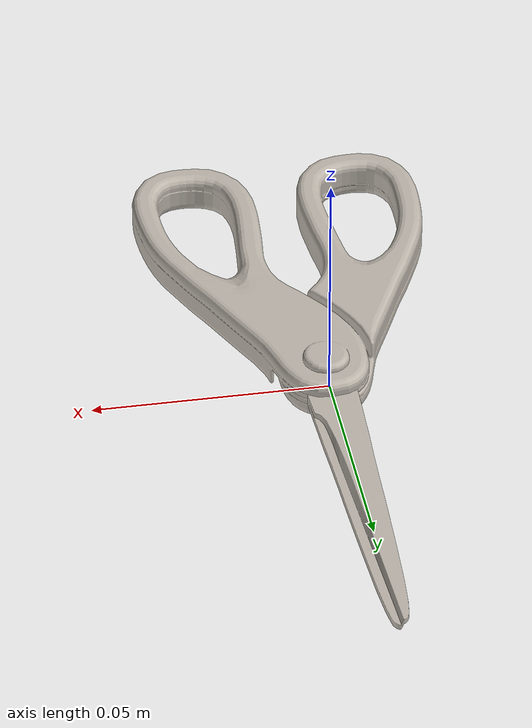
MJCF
<mujoco model="scissors_6">
  <asset>
    <mesh file="visual/model_normalized_0.obj" name="model_normalized_0_vis" scale="0.15999999999999998 0.15999999999999998 0.15999999999999998" refquat="0.7071067811865475 0.0 0.0 0.7071067811865476"/>
    <mesh file="visual/model_normalized_1.obj" name="model_normalized_1_vis" scale="0.15999999999999998 0.15999999999999998 0.15999999999999998" refquat="0.7071067811865475 0.0 0.0 0.7071067811865476"/>
    <mesh file="collision/model_normalized_collision_22.obj" name="model_normalized_collision_22._coll" scale="0.15999999999999998 0.15999999999999998 0.15999999999999998" refquat="0.7071067811865475 0.0 0.0 0.7071067811865476"/>
    <mesh file="collision/model_normalized_collision_23.obj" name="model_normalized_collision_23._coll" scale="0.15999999999999998 0.15999999999999998 0.15999999999999998" refquat="0.7071067811865475 0.0 0.0 0.7071067811865476"/>
    <mesh file="collision/model_normalized_collision_21.obj" name="model_normalized_collision_21._coll" scale="0.15999999999999998 0.15999999999999998 0.15999999999999998" refquat="0.7071067811865475 0.0 0.0 0.7071067811865476"/>
    <mesh file="collision/model_normalized_collision_20.obj" name="model_normalized_collision_20._coll" scale="0.15999999999999998 0.15999999999999998 0.15999999999999998" refquat="0.7071067811865475 0.0 0.0 0.7071067811865476"/>
    <mesh file="collision/model_normalized_collision_24.obj" name="model_normalized_collision_24._coll" scale="0.15999999999999998 0.15999999999999998 0.15999999999999998" refquat="0.7071067811865475 0.0 0.0 0.7071067811865476"/>
    <mesh file="collision/model_normalized_collision_30.obj" name="model_normalized_collision_30._coll" scale="0.15999999999999998 0.15999999999999998 0.15999999999999998" refquat="0.7071067811865475 0.0 0.0 0.7071067811865476"/>
    <mesh file="collision/model_normalized_collision_18.obj" name="model_normalized_collision_18._coll" scale="0.15999999999999998 0.15999999999999998 0.15999999999999998" refquat="0.7071067811865475 0.0 0.0 0.7071067811865476"/>
    <mesh file="collision/model_normalized_collision_19.obj" name="model_normalized_collision_19._coll" scale="0.15999999999999998 0.15999999999999998 0.15999999999999998" refquat="0.7071067811865475 0.0 0.0 0.7071067811865476"/>
    <mesh file="collision/model_normalized_collision_31.obj" name="model_normalized_collision_31._coll" scale="0.15999999999999998 0.15999999999999998 0.15999999999999998" refquat="0.7071067811865475 0.0 0.0 0.7071067811865476"/>
    <mesh file="collision/model_normalized_collision_25.obj" name="model_normalized_collision_25._coll" scale="0.15999999999999998 0.15999999999999998 0.15999999999999998" refquat="0.7071067811865475 0.0 0.0 0.7071067811865476"/>
    <mesh file="collision/model_normalized_collision_27.obj" name="model_normalized_collision_27._coll" scale="0.15999999999999998 0.15999999999999998 0.15999999999999998" refquat="0.7071067811865475 0.0 0.0 0.7071067811865476"/>
    <mesh file="collision/model_normalized_collision_26.obj" name="model_normalized_collision_26._coll" scale="0.15999999999999998 0.15999999999999998 0.15999999999999998" refquat="0.7071067811865475 0.0 0.0 0.7071067811865476"/>
    <mesh file="collision/model_normalized_collision_9.obj" name="model_normalized_collision_9._coll" scale="0.15999999999999998 0.15999999999999998 0.15999999999999998" refquat="0.7071067811865475 0.0 0.0 0.7071067811865476"/>
    <mesh file="collision/model_normalized_collision_8.obj" name="model_normalized_collision_8._coll" scale="0.15999999999999998 0.15999999999999998 0.15999999999999998" refquat="0.7071067811865475 0.0 0.0 0.7071067811865476"/>
    <mesh file="collision/model_normalized_collision_6.obj" name="model_normalized_collision_6._coll" scale="0.15999999999999998 0.15999999999999998 0.15999999999999998" refquat="0.7071067811865475 0.0 0.0 0.7071067811865476"/>
    <mesh file="collision/model_normalized_collision_7.obj" name="model_normalized_collision_7._coll" scale="0.15999999999999998 0.15999999999999998 0.15999999999999998" refquat="0.7071067811865475 0.0 0.0 0.7071067811865476"/>
    <mesh file="collision/model_normalized_collision_5.obj" name="model_normalized_collision_5._coll" scale="0.15999999999999998 0.15999999999999998 0.15999999999999998" refquat="0.7071067811865475 0.0 0.0 0.7071067811865476"/>
    <mesh file="collision/model_normalized_collision_4.obj" name="model_normalized_collision_4._coll" scale="0.15999999999999998 0.15999999999999998 0.15999999999999998" refquat="0.7071067811865475 0.0 0.0 0.7071067811865476"/>
    <mesh file="collision/model_normalized_collision_0.obj" name="model_normalized_collision_0._coll" scale="0.15999999999999998 0.15999999999999998 0.15999999999999998" refquat="0.7071067811865475 0.0 0.0 0.7071067811865476"/>
    <mesh file="collision/model_normalized_collision_1.obj" name="model_normalized_collision_1._coll" scale="0.15999999999999998 0.15999999999999998 0.15999999999999998" refquat="0.7071067811865475 0.0 0.0 0.7071067811865476"/>
    <mesh file="collision/model_normalized_collision_3.obj" name="model_normalized_collision_3._coll" scale="0.15999999999999998 0.15999999999999998 0.15999999999999998" refquat="0.7071067811865475 0.0 0.0 0.7071067811865476"/>
    <mesh file="collision/model_normalized_collision_2.obj" name="model_normalized_collision_2._coll" scale="0.15999999999999998 0.15999999999999998 0.15999999999999998" refquat="0.7071067811865475 0.0 0.0 0.7071067811865476"/>
    <mesh file="collision/model_normalized_collision_17.obj" name="model_normalized_collision_17._coll" scale="0.15999999999999998 0.15999999999999998 0.15999999999999998" refquat="0.7071067811865475 0.0 0.0 0.7071067811865476"/>
    <mesh file="collision/model_normalized_collision_16.obj" name="model_normalized_collision_16._coll" scale="0.15999999999999998 0.15999999999999998 0.15999999999999998" refquat="0.7071067811865475 0.0 0.0 0.7071067811865476"/>
    <mesh file="collision/model_normalized_collision_28.obj" name="model_normalized_collision_28._coll" scale="0.15999999999999998 0.15999999999999998 0.15999999999999998" refquat="0.7071067811865475 0.0 0.0 0.7071067811865476"/>
    <mesh file="collision/model_normalized_collision_14.obj" name="model_normalized_collision_14._coll" scale="0.15999999999999998 0.15999999999999998 0.15999999999999998" refquat="0.7071067811865475 0.0 0.0 0.7071067811865476"/>
    <mesh file="collision/model_normalized_collision_15.obj" name="model_normalized_collision_15._coll" scale="0.15999999999999998 0.15999999999999998 0.15999999999999998" refquat="0.7071067811865475 0.0 0.0 0.7071067811865476"/>
    <mesh file="collision/model_normalized_collision_29.obj" name="model_normalized_collision_29._coll" scale="0.15999999999999998 0.15999999999999998 0.15999999999999998" refquat="0.7071067811865475 0.0 0.0 0.7071067811865476"/>
    <mesh file="collision/model_normalized_collision_11.obj" name="model_normalized_collision_11._coll" scale="0.15999999999999998 0.15999999999999998 0.15999999999999998" refquat="0.7071067811865475 0.0 0.0 0.7071067811865476"/>
    <mesh file="collision/model_normalized_collision_10.obj" name="model_normalized_collision_10._coll" scale="0.15999999999999998 0.15999999999999998 0.15999999999999998" refquat="0.7071067811865475 0.0 0.0 0.7071067811865476"/>
    <mesh file="collision/model_normalized_collision_12.obj" name="model_normalized_collision_12._coll" scale="0.15999999999999998 0.15999999999999998 0.15999999999999998" refquat="0.7071067811865475 0.0 0.0 0.7071067811865476"/>
    <mesh file="collision/model_normalized_collision_13.obj" name="model_normalized_collision_13._coll" scale="0.15999999999999998 0.15999999999999998 0.15999999999999998" refquat="0.7071067811865475 0.0 0.0 0.7071067811865476"/>
    <texture type="2d" name="image0" file="visual/image0.png"/>
    <material name="Scissors_Plastic_Mat" texture="image0" specular="0.5" shininess="0.090820048"/>
    <material name="Scissors_Steel_mat" texture="image0" specular="0.5" shininess="0.656836549"/>
  </asset>
  <worldbody>
  <body>
      <body name="object">
        <geom solimp="0.998 0.998 0.001" solref="0.001 1" density="100" friction="0.95 0.3 0.1" type="mesh" mesh="model_normalized_0_vis" conaffinity="0" contype="0" group="1" material="Scissors_Plastic_Mat"/>
        <geom solimp="0.998 0.998 0.001" solref="0.001 1" density="100" friction="0.95 0.3 0.1" type="mesh" mesh="model_normalized_1_vis" conaffinity="0" contype="0" group="1" material="Scissors_Steel_mat"/>
        <geom solimp="0.998 0.998 0.001" solref="0.001 1" density="100" friction="0.95 0.3 0.1" type="mesh" mesh="model_normalized_collision_22._coll" group="0" rgba="0.8 0.8 0.8 0.0"/>
        <geom solimp="0.998 0.998 0.001" solref="0.001 1" density="100" friction="0.95 0.3 0.1" type="mesh" mesh="model_normalized_collision_23._coll" group="0" rgba="0.8 0.8 0.8 0.0"/>
        <geom solimp="0.998 0.998 0.001" solref="0.001 1" density="100" friction="0.95 0.3 0.1" type="mesh" mesh="model_normalized_collision_21._coll" group="0" rgba="0.8 0.8 0.8 0.0"/>
        <geom solimp="0.998 0.998 0.001" solref="0.001 1" density="100" friction="0.95 0.3 0.1" type="mesh" mesh="model_normalized_collision_20._coll" group="0" rgba="0.8 0.8 0.8 0.0"/>
        <geom solimp="0.998 0.998 0.001" solref="0.001 1" density="100" friction="0.95 0.3 0.1" type="mesh" mesh="model_normalized_collision_24._coll" group="0" rgba="0.8 0.8 0.8 0.0"/>
        <geom solimp="0.998 0.998 0.001" solref="0.001 1" density="100" friction="0.95 0.3 0.1" type="mesh" mesh="model_normalized_collision_30._coll" group="0" rgba="0.8 0.8 0.8 0.0"/>
        <geom solimp="0.998 0.998 0.001" solref="0.001 1" density="100" friction="0.95 0.3 0.1" type="mesh" mesh="model_normalized_collision_18._coll" group="0" rgba="0.8 0.8 0.8 0.0"/>
        <geom solimp="0.998 0.998 0.001" solref="0.001 1" density="100" friction="0.95 0.3 0.1" type="mesh" mesh="model_normalized_collision_19._coll" group="0" rgba="0.8 0.8 0.8 0.0"/>
        <geom solimp="0.998 0.998 0.001" solref="0.001 1" density="100" friction="0.95 0.3 0.1" type="mesh" mesh="model_normalized_collision_31._coll" group="0" rgba="0.8 0.8 0.8 0.0"/>
        <geom solimp="0.998 0.998 0.001" solref="0.001 1" density="100" friction="0.95 0.3 0.1" type="mesh" mesh="model_normalized_collision_25._coll" group="0" rgba="0.8 0.8 0.8 0.0"/>
        <geom solimp="0.998 0.998 0.001" solref="0.001 1" density="100" friction="0.95 0.3 0.1" type="mesh" mesh="model_normalized_collision_27._coll" group="0" rgba="0.8 0.8 0.8 0.0"/>
        <geom solimp="0.998 0.998 0.001" solref="0.001 1" density="100" friction="0.95 0.3 0.1" type="mesh" mesh="model_normalized_collision_26._coll" group="0" rgba="0.8 0.8 0.8 0.0"/>
        <geom solimp="0.998 0.998 0.001" solref="0.001 1" density="100" friction="0.95 0.3 0.1" type="mesh" mesh="model_normalized_collision_9._coll" group="0" rgba="0.8 0.8 0.8 0.0"/>
        <geom solimp="0.998 0.998 0.001" solref="0.001 1" density="100" friction="0.95 0.3 0.1" type="mesh" mesh="model_normalized_collision_8._coll" group="0" rgba="0.8 0.8 0.8 0.0"/>
        <geom solimp="0.998 0.998 0.001" solref="0.001 1" density="100" friction="0.95 0.3 0.1" type="mesh" mesh="model_normalized_collision_6._coll" group="0" rgba="0.8 0.8 0.8 0.0"/>
        <geom solimp="0.998 0.998 0.001" solref="0.001 1" density="100" friction="0.95 0.3 0.1" type="mesh" mesh="model_normalized_collision_7._coll" group="0" rgba="0.8 0.8 0.8 0.0"/>
        <geom solimp="0.998 0.998 0.001" solref="0.001 1" density="100" friction="0.95 0.3 0.1" type="mesh" mesh="model_normalized_collision_5._coll" group="0" rgba="0.8 0.8 0.8 0.0"/>
        <geom solimp="0.998 0.998 0.001" solref="0.001 1" density="100" friction="0.95 0.3 0.1" type="mesh" mesh="model_normalized_collision_4._coll" group="0" rgba="0.8 0.8 0.8 0.0"/>
        <geom solimp="0.998 0.998 0.001" solref="0.001 1" density="100" friction="0.95 0.3 0.1" type="mesh" mesh="model_normalized_collision_0._coll" group="0" rgba="0.8 0.8 0.8 0.0"/>
        <geom solimp="0.998 0.998 0.001" solref="0.001 1" density="100" friction="0.95 0.3 0.1" type="mesh" mesh="model_normalized_collision_1._coll" group="0" rgba="0.8 0.8 0.8 0.0"/>
        <geom solimp="0.998 0.998 0.001" solref="0.001 1" density="100" friction="0.95 0.3 0.1" type="mesh" mesh="model_normalized_collision_3._coll" group="0" rgba="0.8 0.8 0.8 0.0"/>
        <geom solimp="0.998 0.998 0.001" solref="0.001 1" density="100" friction="0.95 0.3 0.1" type="mesh" mesh="model_normalized_collision_2._coll" group="0" rgba="0.8 0.8 0.8 0.0"/>
        <geom solimp="0.998 0.998 0.001" solref="0.001 1" density="100" friction="0.95 0.3 0.1" type="mesh" mesh="model_normalized_collision_17._coll" group="0" rgba="0.8 0.8 0.8 0.0"/>
        <geom solimp="0.998 0.998 0.001" solref="0.001 1" density="100" friction="0.95 0.3 0.1" type="mesh" mesh="model_normalized_collision_16._coll" group="0" rgba="0.8 0.8 0.8 0.0"/>
        <geom solimp="0.998 0.998 0.001" solref="0.001 1" density="100" friction="0.95 0.3 0.1" type="mesh" mesh="model_normalized_collision_28._coll" group="0" rgba="0.8 0.8 0.8 0.0"/>
        <geom solimp="0.998 0.998 0.001" solref="0.001 1" density="100" friction="0.95 0.3 0.1" type="mesh" mesh="model_normalized_collision_14._coll" group="0" rgba="0.8 0.8 0.8 0.0"/>
        <geom solimp="0.998 0.998 0.001" solref="0.001 1" density="100" friction="0.95 0.3 0.1" type="mesh" mesh="model_normalized_collision_15._coll" group="0" rgba="0.8 0.8 0.8 0.0"/>
        <geom solimp="0.998 0.998 0.001" solref="0.001 1" density="100" friction="0.95 0.3 0.1" type="mesh" mesh="model_normalized_collision_29._coll" group="0" rgba="0.8 0.8 0.8 0.0"/>
        <geom solimp="0.998 0.998 0.001" solref="0.001 1" density="100" friction="0.95 0.3 0.1" type="mesh" mesh="model_normalized_collision_11._coll" group="0" rgba="0.8 0.8 0.8 0.0"/>
        <geom solimp="0.998 0.998 0.001" solref="0.001 1" density="100" friction="0.95 0.3 0.1" type="mesh" mesh="model_normalized_collision_10._coll" group="0" rgba="0.8 0.8 0.8 0.0"/>
        <geom solimp="0.998 0.998 0.001" solref="0.001 1" density="100" friction="0.95 0.3 0.1" type="mesh" mesh="model_normalized_collision_12._coll" group="0" rgba="0.8 0.8 0.8 0.0"/>
        <geom solimp="0.998 0.998 0.001" solref="0.001 1" density="100" friction="0.95 0.3 0.1" type="mesh" mesh="model_normalized_collision_13._coll" group="0" rgba="0.8 0.8 0.8 0.0"/>
      </body>
      <site rgba="0 0 0 0" size="0.005" pos="-0.0006072191999999997 0.00018205839999999805 -0.0057680096" name="bottom_site"/>
      <site rgba="0 0 0 0" size="0.005" pos="-0.0006072191999999997 0.00018205839999999805 0.005768012799999999" name="top_site"/>
      <site rgba="0 0 0 0" size="0.005" pos="0.0298554496 0.0799614256 1.599999999712942e-09" name="horizontal_radius_site"/>
    </body>
    </worldbody>
</mujoco>
